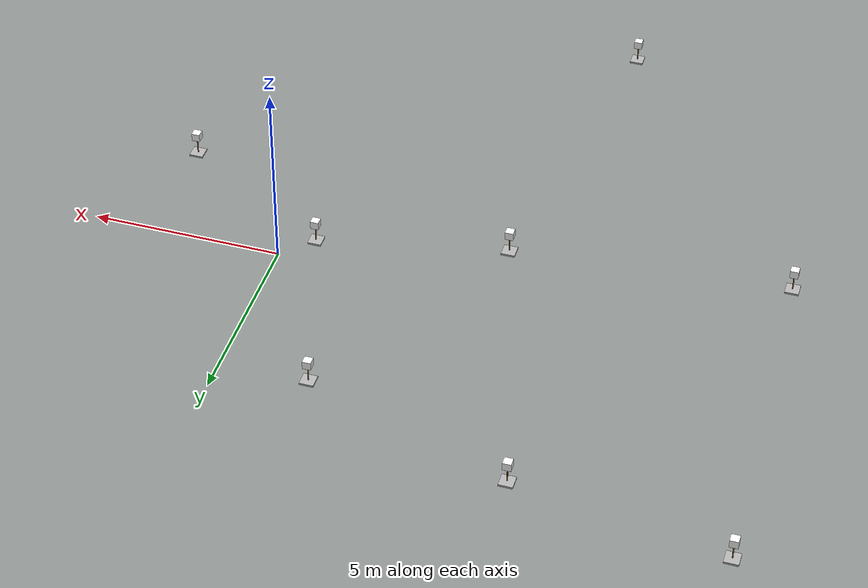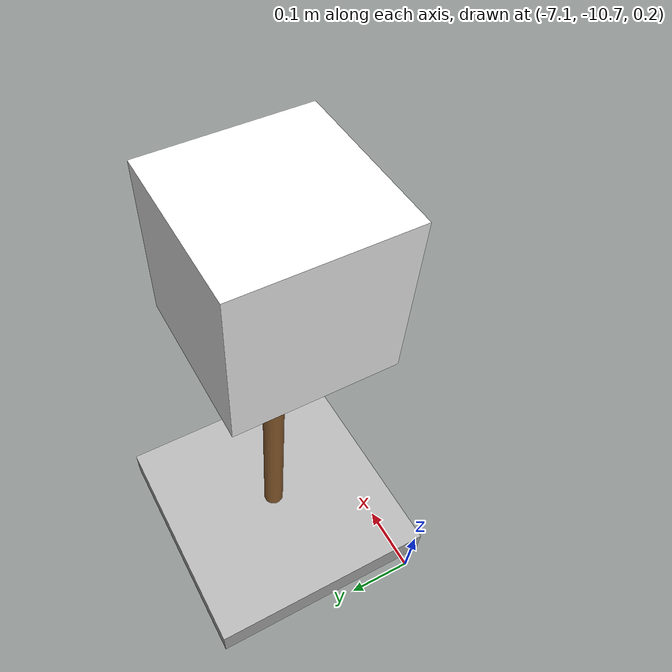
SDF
<sdf version="1.7">
 <world name="marsyard">
  <gravity>0 0 -9.81</gravity>
  <physics name="dart_physics" type="ignored">
   <max_step_size>0.003</max_step_size>
   <real_time_update_rate>333</real_time_update_rate>
   <real_time_factor>1.0</real_time_factor>
  </physics>
  <plugin filename="libgz-sim-physics-system.so" name="gz::sim::systems::Physics"/>
  <plugin filename="libgz-sim-user-commands-system.so" name="gz::sim::systems::UserCommands"/>
  <plugin filename="libgz-sim-scene-broadcaster-system.so" name="gz::sim::systems::SceneBroadcaster"/>
  <plugin filename="libgz-sim-contact-system.so" name="gz::sim::systems::Contact"/>
  <plugin filename="libgz-sim-sensors-system.so" name="gz::sim::systems::Sensors">
   <render_engine>ogre2</render_engine>
  </plugin>
  <scene>
   <ambient>0.95 0.95 0.95 1</ambient>
   <background>0.70 0.70 0.70 1</background>
   <shadows>false</shadows>
  </scene>
  <light type="directional" name="sun">
   <cast_shadows>false</cast_shadows>
   <pose>0 0 30 0 0 0</pose>
   <diffuse>1 1 1 1</diffuse>
   <specular>0.15 0.15 0.15 1</specular>
   <direction>-0.35 0.1 -0.93</direction>
  </light>
  <model name="ArUco_51">
   <static>true</static>
   <pose>-12.8626 -1.6754 0.7429 0.0000 0.0000 0.0000</pose>
   <include><uri>model://aruco_1</uri></include>
  </model>
  <model name="ArUco_52">
   <static>true</static>
   <pose>-6.9112 -10.5555 0.2000 0.0000 0.0000 0.0000</pose>
   <include><uri>model://aruco_2</uri></include>
  </model>
  <model name="ArUco_60">
   <static>true</static>
   <pose>2.6570 -1.4837 1.5374 0.0000 0.0000 0.0000</pose>
   <include><uri>model://aruco_10</uri></include>
  </model>
  <model name="ArUco_61">
   <static>true</static>
   <pose>-1.0969 0.1368 0.8388 0.0000 0.0000 0.0000</pose>
   <include><uri>model://aruco_11</uri></include>
  </model>
  <model name="ArUco_62">
   <static>true</static>
   <pose>-2.7377 5.3769 1.2709 0.0000 0.0000 0.0000</pose>
   <include><uri>model://aruco_12</uri></include>
  </model>
  <model name="ArUco_63">
   <static>true</static>
   <pose>-5.9985 -0.3173 1.3591 0.0000 0.0000 0.0000</pose>
   <include><uri>model://aruco_13</uri></include>
  </model>
  <model name="ArUco_64">
   <static>true</static>
   <pose>-7.9646 6.9120 1.0548 0.0000 0.0000 0.0000</pose>
   <include><uri>model://aruco_14</uri></include>
  </model>
  <model name="ArUco_65">
   <static>true</static>
   <pose>-13.2124 7.5601 0.9365 0.0000 0.0000 0.0000</pose>
   <include><uri>model://aruco_15</uri></include>
  </model>
 </world>
</sdf>

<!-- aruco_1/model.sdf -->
<sdf version="1.9">
  <model name="aruco_1">
    <static>true</static>
    <link name="link">
      <!-- Concrete Base -->
      <visual name="base_visual">
        <pose>0 0 0.025 0 0 0</pose>
        <geometry>
          <box>
            <size>0.35 0.35 0.05</size>
          </box>
        </geometry>
        <material>
          <ambient>0.7 0.7 0.7 1</ambient>
          <diffuse>0.7 0.7 0.7 1</diffuse>
        </material>
      </visual>
      <collision name="base_collision">
        <pose>0 0 0.025 0 0 0</pose>
        <geometry>
          <box>
            <size>0.35 0.35 0.05</size>
          </box>
        </geometry>
      </collision>

      <!-- Wooden Pole -->
      <visual name="pole_visual">
        <pose>0 0 0.26 0 0 0</pose>
        <geometry>
          <cylinder>
            <radius>0.015</radius>
            <length>0.42</length>
          </cylinder>
        </geometry>
        <material>
          <ambient>0.6 0.4 0.2 1</ambient>
          <diffuse>0.6 0.4 0.2 1</diffuse>
        </material>
      </visual>
      <collision name="pole_collision">
        <pose>0 0 0.26 0 0 0</pose>
        <geometry>
          <cylinder>
            <radius>0.015</radius>
            <length>0.42</length>
          </cylinder>
        </geometry>
      </collision>

      <!-- Head Box with ArUco Texture -->
      <visual name="head_visual">
        <pose>0 0 0.575 0 0 0</pose>
        <geometry>
          <box>
            <size>0.21 0.21 0.21</size>
          </box>
        </geometry>
        <material>
          <ambient>1 1 1 1</ambient>
          <diffuse>1 1 1 1</diffuse>
          <pbr>
            <metal>
              <albedo_map>model://aruco_1/materials/textures/marker_1.png</albedo_map>
            </metal>
          </pbr>
        </material>
      </visual>
      <collision name="head_collision">
        <pose>0 0 0.575 0 0 0</pose>
        <geometry>
          <box>
            <size>0.21 0.21 0.21</size>
          </box>
        </geometry>
      </collision>
    </link>
  </model>
</sdf>

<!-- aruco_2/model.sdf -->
<sdf version="1.9">
  <model name="aruco_2">
    <static>true</static>
    <link name="link">
      <!-- Concrete Base -->
      <visual name="base_visual">
        <pose>0 0 0.025 0 0 0</pose>
        <geometry>
          <box>
            <size>0.35 0.35 0.05</size>
          </box>
        </geometry>
        <material>
          <ambient>0.7 0.7 0.7 1</ambient>
          <diffuse>0.7 0.7 0.7 1</diffuse>
        </material>
      </visual>
      <collision name="base_collision">
        <pose>0 0 0.025 0 0 0</pose>
        <geometry>
          <box>
            <size>0.35 0.35 0.05</size>
          </box>
        </geometry>
      </collision>

      <!-- Wooden Pole -->
      <visual name="pole_visual">
        <pose>0 0 0.26 0 0 0</pose>
        <geometry>
          <cylinder>
            <radius>0.015</radius>
            <length>0.42</length>
          </cylinder>
        </geometry>
        <material>
          <ambient>0.6 0.4 0.2 1</ambient>
          <diffuse>0.6 0.4 0.2 1</diffuse>
        </material>
      </visual>
      <collision name="pole_collision">
        <pose>0 0 0.26 0 0 0</pose>
        <geometry>
          <cylinder>
            <radius>0.015</radius>
            <length>0.42</length>
          </cylinder>
        </geometry>
      </collision>

      <!-- Head Box with ArUco Texture -->
      <visual name="head_visual">
        <pose>0 0 0.575 0 0 0</pose>
        <geometry>
          <box>
            <size>0.21 0.21 0.21</size>
          </box>
        </geometry>
        <material>
          <ambient>1 1 1 1</ambient>
          <diffuse>1 1 1 1</diffuse>
          <pbr>
            <metal>
              <albedo_map>model://aruco_2/materials/textures/marker_2.png</albedo_map>
            </metal>
          </pbr>
        </material>
      </visual>
      <collision name="head_collision">
        <pose>0 0 0.575 0 0 0</pose>
        <geometry>
          <box>
            <size>0.21 0.21 0.21</size>
          </box>
        </geometry>
      </collision>
    </link>
  </model>
</sdf>

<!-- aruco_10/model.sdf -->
<sdf version="1.9">
  <model name="aruco_10">
    <static>true</static>
    <link name="link">
      <!-- Concrete Base -->
      <visual name="base_visual">
        <pose>0 0 0.025 0 0 0</pose>
        <geometry>
          <box>
            <size>0.35 0.35 0.05</size>
          </box>
        </geometry>
        <material>
          <ambient>0.7 0.7 0.7 1</ambient>
          <diffuse>0.7 0.7 0.7 1</diffuse>
        </material>
      </visual>
      <collision name="base_collision">
        <pose>0 0 0.025 0 0 0</pose>
        <geometry>
          <box>
            <size>0.35 0.35 0.05</size>
          </box>
        </geometry>
      </collision>

      <!-- Wooden Pole -->
      <visual name="pole_visual">
        <pose>0 0 0.26 0 0 0</pose>
        <geometry>
          <cylinder>
            <radius>0.015</radius>
            <length>0.42</length>
          </cylinder>
        </geometry>
        <material>
          <ambient>0.6 0.4 0.2 1</ambient>
          <diffuse>0.6 0.4 0.2 1</diffuse>
        </material>
      </visual>
      <collision name="pole_collision">
        <pose>0 0 0.26 0 0 0</pose>
        <geometry>
          <cylinder>
            <radius>0.015</radius>
            <length>0.42</length>
          </cylinder>
        </geometry>
      </collision>

      <!-- Head Box with ArUco Texture -->
      <visual name="head_visual">
        <pose>0 0 0.575 0 0 0</pose>
        <geometry>
          <box>
            <size>0.21 0.21 0.21</size>
          </box>
        </geometry>
        <material>
          <ambient>1 1 1 1</ambient>
          <diffuse>1 1 1 1</diffuse>
          <pbr>
            <metal>
              <albedo_map>model://aruco_10/materials/textures/marker_10.png</albedo_map>
            </metal>
          </pbr>
        </material>
      </visual>
      <collision name="head_collision">
        <pose>0 0 0.575 0 0 0</pose>
        <geometry>
          <box>
            <size>0.21 0.21 0.21</size>
          </box>
        </geometry>
      </collision>
    </link>
  </model>
</sdf>

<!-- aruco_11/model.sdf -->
<sdf version="1.9">
  <model name="aruco_11">
    <static>true</static>
    <link name="link">
      <!-- Concrete Base -->
      <visual name="base_visual">
        <pose>0 0 0.025 0 0 0</pose>
        <geometry>
          <box>
            <size>0.35 0.35 0.05</size>
          </box>
        </geometry>
        <material>
          <ambient>0.7 0.7 0.7 1</ambient>
          <diffuse>0.7 0.7 0.7 1</diffuse>
        </material>
      </visual>
      <collision name="base_collision">
        <pose>0 0 0.025 0 0 0</pose>
        <geometry>
          <box>
            <size>0.35 0.35 0.05</size>
          </box>
        </geometry>
      </collision>

      <!-- Wooden Pole -->
      <visual name="pole_visual">
        <pose>0 0 0.26 0 0 0</pose>
        <geometry>
          <cylinder>
            <radius>0.015</radius>
            <length>0.42</length>
          </cylinder>
        </geometry>
        <material>
          <ambient>0.6 0.4 0.2 1</ambient>
          <diffuse>0.6 0.4 0.2 1</diffuse>
        </material>
      </visual>
      <collision name="pole_collision">
        <pose>0 0 0.26 0 0 0</pose>
        <geometry>
          <cylinder>
            <radius>0.015</radius>
            <length>0.42</length>
          </cylinder>
        </geometry>
      </collision>

      <!-- Head Box with ArUco Texture -->
      <visual name="head_visual">
        <pose>0 0 0.575 0 0 0</pose>
        <geometry>
          <box>
            <size>0.21 0.21 0.21</size>
          </box>
        </geometry>
        <material>
          <ambient>1 1 1 1</ambient>
          <diffuse>1 1 1 1</diffuse>
          <pbr>
            <metal>
              <albedo_map>model://aruco_11/materials/textures/marker_11.png</albedo_map>
            </metal>
          </pbr>
        </material>
      </visual>
      <collision name="head_collision">
        <pose>0 0 0.575 0 0 0</pose>
        <geometry>
          <box>
            <size>0.21 0.21 0.21</size>
          </box>
        </geometry>
      </collision>
    </link>
  </model>
</sdf>

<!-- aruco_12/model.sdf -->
<sdf version="1.9">
  <model name="aruco_12">
    <static>true</static>
    <link name="link">
      <!-- Concrete Base -->
      <visual name="base_visual">
        <pose>0 0 0.025 0 0 0</pose>
        <geometry>
          <box>
            <size>0.35 0.35 0.05</size>
          </box>
        </geometry>
        <material>
          <ambient>0.7 0.7 0.7 1</ambient>
          <diffuse>0.7 0.7 0.7 1</diffuse>
        </material>
      </visual>
      <collision name="base_collision">
        <pose>0 0 0.025 0 0 0</pose>
        <geometry>
          <box>
            <size>0.35 0.35 0.05</size>
          </box>
        </geometry>
      </collision>

      <!-- Wooden Pole -->
      <visual name="pole_visual">
        <pose>0 0 0.26 0 0 0</pose>
        <geometry>
          <cylinder>
            <radius>0.015</radius>
            <length>0.42</length>
          </cylinder>
        </geometry>
        <material>
          <ambient>0.6 0.4 0.2 1</ambient>
          <diffuse>0.6 0.4 0.2 1</diffuse>
        </material>
      </visual>
      <collision name="pole_collision">
        <pose>0 0 0.26 0 0 0</pose>
        <geometry>
          <cylinder>
            <radius>0.015</radius>
            <length>0.42</length>
          </cylinder>
        </geometry>
      </collision>

      <!-- Head Box with ArUco Texture -->
      <visual name="head_visual">
        <pose>0 0 0.575 0 0 0</pose>
        <geometry>
          <box>
            <size>0.21 0.21 0.21</size>
          </box>
        </geometry>
        <material>
          <ambient>1 1 1 1</ambient>
          <diffuse>1 1 1 1</diffuse>
          <pbr>
            <metal>
              <albedo_map>model://aruco_12/materials/textures/marker_12.png</albedo_map>
            </metal>
          </pbr>
        </material>
      </visual>
      <collision name="head_collision">
        <pose>0 0 0.575 0 0 0</pose>
        <geometry>
          <box>
            <size>0.21 0.21 0.21</size>
          </box>
        </geometry>
      </collision>
    </link>
  </model>
</sdf>

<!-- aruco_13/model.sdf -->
<sdf version="1.9">
  <model name="aruco_13">
    <static>true</static>
    <link name="link">
      <!-- Concrete Base -->
      <visual name="base_visual">
        <pose>0 0 0.025 0 0 0</pose>
        <geometry>
          <box>
            <size>0.35 0.35 0.05</size>
          </box>
        </geometry>
        <material>
          <ambient>0.7 0.7 0.7 1</ambient>
          <diffuse>0.7 0.7 0.7 1</diffuse>
        </material>
      </visual>
      <collision name="base_collision">
        <pose>0 0 0.025 0 0 0</pose>
        <geometry>
          <box>
            <size>0.35 0.35 0.05</size>
          </box>
        </geometry>
      </collision>

      <!-- Wooden Pole -->
      <visual name="pole_visual">
        <pose>0 0 0.26 0 0 0</pose>
        <geometry>
          <cylinder>
            <radius>0.015</radius>
            <length>0.42</length>
          </cylinder>
        </geometry>
        <material>
          <ambient>0.6 0.4 0.2 1</ambient>
          <diffuse>0.6 0.4 0.2 1</diffuse>
        </material>
      </visual>
      <collision name="pole_collision">
        <pose>0 0 0.26 0 0 0</pose>
        <geometry>
          <cylinder>
            <radius>0.015</radius>
            <length>0.42</length>
          </cylinder>
        </geometry>
      </collision>

      <!-- Head Box with ArUco Texture -->
      <visual name="head_visual">
        <pose>0 0 0.575 0 0 0</pose>
        <geometry>
          <box>
            <size>0.21 0.21 0.21</size>
          </box>
        </geometry>
        <material>
          <ambient>1 1 1 1</ambient>
          <diffuse>1 1 1 1</diffuse>
          <pbr>
            <metal>
              <albedo_map>model://aruco_13/materials/textures/marker_13.png</albedo_map>
            </metal>
          </pbr>
        </material>
      </visual>
      <collision name="head_collision">
        <pose>0 0 0.575 0 0 0</pose>
        <geometry>
          <box>
            <size>0.21 0.21 0.21</size>
          </box>
        </geometry>
      </collision>
    </link>
  </model>
</sdf>

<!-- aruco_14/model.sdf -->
<sdf version="1.9">
  <model name="aruco_14">
    <static>true</static>
    <link name="link">
      <!-- Concrete Base -->
      <visual name="base_visual">
        <pose>0 0 0.025 0 0 0</pose>
        <geometry>
          <box>
            <size>0.35 0.35 0.05</size>
          </box>
        </geometry>
        <material>
          <ambient>0.7 0.7 0.7 1</ambient>
          <diffuse>0.7 0.7 0.7 1</diffuse>
        </material>
      </visual>
      <collision name="base_collision">
        <pose>0 0 0.025 0 0 0</pose>
        <geometry>
          <box>
            <size>0.35 0.35 0.05</size>
          </box>
        </geometry>
      </collision>

      <!-- Wooden Pole -->
      <visual name="pole_visual">
        <pose>0 0 0.26 0 0 0</pose>
        <geometry>
          <cylinder>
            <radius>0.015</radius>
            <length>0.42</length>
          </cylinder>
        </geometry>
        <material>
          <ambient>0.6 0.4 0.2 1</ambient>
          <diffuse>0.6 0.4 0.2 1</diffuse>
        </material>
      </visual>
      <collision name="pole_collision">
        <pose>0 0 0.26 0 0 0</pose>
        <geometry>
          <cylinder>
            <radius>0.015</radius>
            <length>0.42</length>
          </cylinder>
        </geometry>
      </collision>

      <!-- Head Box with ArUco Texture -->
      <visual name="head_visual">
        <pose>0 0 0.575 0 0 0</pose>
        <geometry>
          <box>
            <size>0.21 0.21 0.21</size>
          </box>
        </geometry>
        <material>
          <ambient>1 1 1 1</ambient>
          <diffuse>1 1 1 1</diffuse>
          <pbr>
            <metal>
              <albedo_map>model://aruco_14/materials/textures/marker_14.png</albedo_map>
            </metal>
          </pbr>
        </material>
      </visual>
      <collision name="head_collision">
        <pose>0 0 0.575 0 0 0</pose>
        <geometry>
          <box>
            <size>0.21 0.21 0.21</size>
          </box>
        </geometry>
      </collision>
    </link>
  </model>
</sdf>

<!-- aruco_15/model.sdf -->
<sdf version="1.9">
  <model name="aruco_15">
    <static>true</static>
    <link name="link">
      <!-- Concrete Base -->
      <visual name="base_visual">
        <pose>0 0 0.025 0 0 0</pose>
        <geometry>
          <box>
            <size>0.35 0.35 0.05</size>
          </box>
        </geometry>
        <material>
          <ambient>0.7 0.7 0.7 1</ambient>
          <diffuse>0.7 0.7 0.7 1</diffuse>
        </material>
      </visual>
      <collision name="base_collision">
        <pose>0 0 0.025 0 0 0</pose>
        <geometry>
          <box>
            <size>0.35 0.35 0.05</size>
          </box>
        </geometry>
      </collision>

      <!-- Wooden Pole -->
      <visual name="pole_visual">
        <pose>0 0 0.26 0 0 0</pose>
        <geometry>
          <cylinder>
            <radius>0.015</radius>
            <length>0.42</length>
          </cylinder>
        </geometry>
        <material>
          <ambient>0.6 0.4 0.2 1</ambient>
          <diffuse>0.6 0.4 0.2 1</diffuse>
        </material>
      </visual>
      <collision name="pole_collision">
        <pose>0 0 0.26 0 0 0</pose>
        <geometry>
          <cylinder>
            <radius>0.015</radius>
            <length>0.42</length>
          </cylinder>
        </geometry>
      </collision>

      <!-- Head Box with ArUco Texture -->
      <visual name="head_visual">
        <pose>0 0 0.575 0 0 0</pose>
        <geometry>
          <box>
            <size>0.21 0.21 0.21</size>
          </box>
        </geometry>
        <material>
          <ambient>1 1 1 1</ambient>
          <diffuse>1 1 1 1</diffuse>
          <pbr>
            <metal>
              <albedo_map>model://aruco_15/materials/textures/marker_15.png</albedo_map>
            </metal>
          </pbr>
        </material>
      </visual>
      <collision name="head_collision">
        <pose>0 0 0.575 0 0 0</pose>
        <geometry>
          <box>
            <size>0.21 0.21 0.21</size>
          </box>
        </geometry>
      </collision>
    </link>
  </model>
</sdf>
